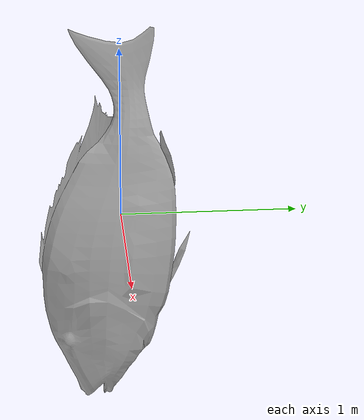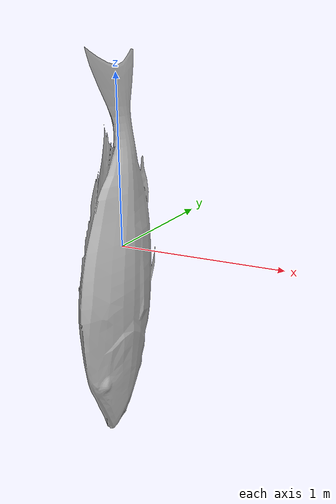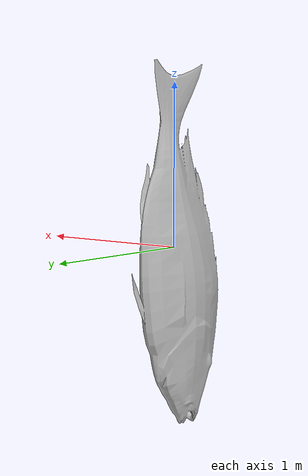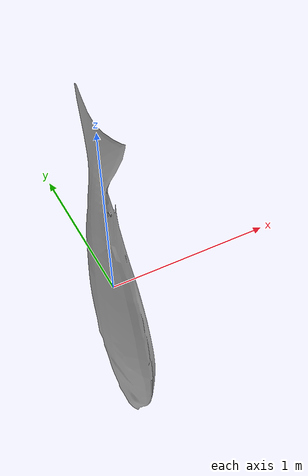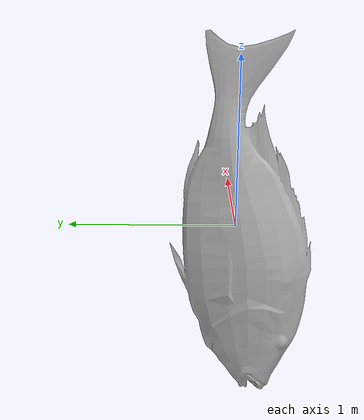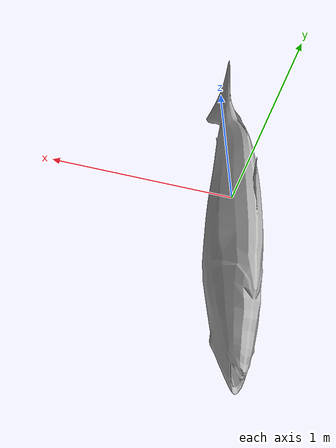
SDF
<?xml version="1.0" ?>
<sdf version="1.6">
  <model name="fish">
    <static>true</static>
    <link name="link">
      <visual name="visual">
        <pose>0 0 0 0 1.5708 1.5708</pose>
        <geometry>
          <mesh>
            <uri>model://fish/meshes/fish.obj</uri>
            <scale>1 1 1</scale>
          </mesh>
        </geometry>
        <material>
          <script>
            <uri>model://fish/materials/scripts</uri>
            <uri>model://fish/materials/textures</uri>
            <name>Fish/Diffuse</name>
          </script>
        </material>
      </visual>

      <collision name="collision">
        <pose>0 0 0 0 1.5708 1.5708</pose>
        <geometry>
          <mesh>
            <uri>model://fish/meshes/fish.obj</uri>
            <scale>1 1 1</scale>
          </mesh>
        </geometry>
      </collision>
    </link>
  </model>
</sdf>
